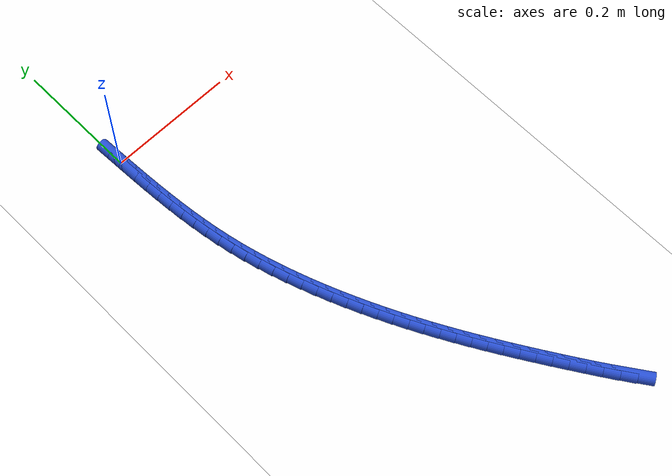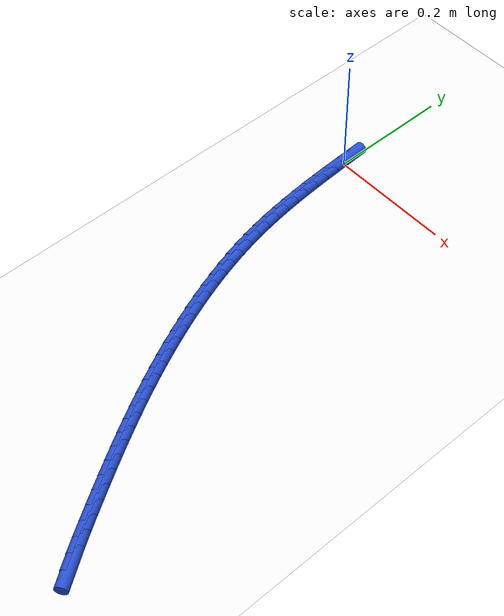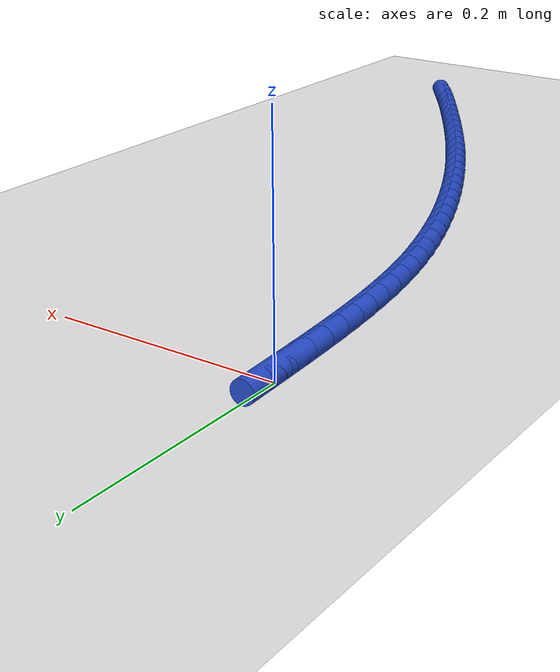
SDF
<sdf version="1.6">
 <world name="default">
  <model name="ground_plane">
   <static>1</static>
   <link name="link">
    <collision name="collision">
     <geometry><plane><normal>0 0 1</normal><size>100 100</size></plane></geometry>
     <surface><friction><ode><mu>100</mu><mu2>50</mu2></ode></friction></surface>
    </collision>
    <visual name="visual">
     <cast_shadows>0</cast_shadows>
     <geometry><plane><normal>0 0 1</normal><size>100 100</size></plane></geometry>
     <material>
      <script><uri>file://media/materials/scripts/gazebo.material</uri><name>Gazebo/WhiteGlow</name></script>
     </material>
    </visual>
   </link>
  </model>
  <model name="line">
   <link name="link_255">
    <pose>0.28056937066500454 -0.7446485402681698 0.01 0 1.57 -0.9630267590334372</pose>
    <collision name="collision">
     <geometry><cylinder><radius>0.01</radius><length>0.08</length></cylinder></geometry>
    </collision>
    <visual name="visual">
     <material>
      <script><name>Gazebo/Blue</name><uri>file://media/materials/scripts/gazebo.material</uri></script>
     </material>
     <geometry><cylinder><radius>0.01</radius><length>0.08</length></cylinder></geometry>
    </visual>
   </link>
   <link name="link_256">
    <pose>0.2667505615090434 -0.7247826279207238 0.01 0 1.57 -0.9837155238845308</pose>
    <collision name="collision">
     <geometry><cylinder><radius>0.01</radius><length>0.08</length></cylinder></geometry>
    </collision>
    <visual name="visual">
     <material>
      <script><name>Gazebo/Blue</name><uri>file://media/materials/scripts/gazebo.material</uri></script>
     </material>
     <geometry><cylinder><radius>0.01</radius><length>0.08</length></cylinder></geometry>
    </visual>
   </link>
   <link name="link_257">
    <pose>0.2533416906367986 -0.704629094985997 0.01 0 1.57 -0.9970443328957461</pose>
    <collision name="collision">
     <geometry><cylinder><radius>0.01</radius><length>0.08</length></cylinder></geometry>
    </collision>
    <visual name="visual">
     <material>
      <script><name>Gazebo/Blue</name><uri>file://media/materials/scripts/gazebo.material</uri></script>
     </material>
     <geometry><cylinder><radius>0.01</radius><length>0.08</length></cylinder></geometry>
    </visual>
   </link>
   <link name="link_258">
    <pose>0.24026441296643977 -0.6843942388483213 0.01 0 1.57 -1.0039140971449847</pose>
    <collision name="collision">
     <geometry><cylinder><radius>0.01</radius><length>0.08</length></cylinder></geometry>
    </collision>
    <visual name="visual">
     <material>
      <script><name>Gazebo/Blue</name><uri>file://media/materials/scripts/gazebo.material</uri></script>
     </material>
     <geometry><cylinder><radius>0.01</radius><length>0.08</length></cylinder></geometry>
    </visual>
   </link>
   <link name="link_259">
    <pose>0.22744834440279066 -0.6642615044161951 0.01 0 1.57 -1.0096226198764473</pose>
    <collision name="collision">
     <geometry><cylinder><radius>0.01</radius><length>0.08</length></cylinder></geometry>
    </collision>
    <visual name="visual">
     <material>
      <script><name>Gazebo/Blue</name><uri>file://media/materials/scripts/gazebo.material</uri></script>
     </material>
     <geometry><cylinder><radius>0.01</radius><length>0.08</length></cylinder></geometry>
    </visual>
   </link>
   <link name="link_260">
    <pose>0.21487644427381808 -0.6442612111952875 0.01 0 1.57 -1.0163605029629423</pose>
    <collision name="collision">
     <geometry><cylinder><radius>0.01</radius><length>0.08</length></cylinder></geometry>
    </collision>
    <visual name="visual">
     <material>
      <script><name>Gazebo/Blue</name><uri>file://media/materials/scripts/gazebo.material</uri></script>
     </material>
     <geometry><cylinder><radius>0.01</radius><length>0.08</length></cylinder></geometry>
    </visual>
   </link>
   <link name="link_261">
    <pose>0.2025535884064748 -0.62436076610452 0.01 0 1.57 -1.0241408725866683</pose>
    <collision name="collision">
     <geometry><cylinder><radius>0.01</radius><length>0.08</length></cylinder></geometry>
    </collision>
    <visual name="visual">
     <material>
      <script><name>Gazebo/Blue</name><uri>file://media/materials/scripts/gazebo.material</uri></script>
     </material>
     <geometry><cylinder><radius>0.01</radius><length>0.08</length></cylinder></geometry>
    </visual>
   </link>
   <link name="link_262">
    <pose>0.1904847198338123 -0.6045273831437944 0.01 0 1.57 -1.0329628603016814</pose>
    <collision name="collision">
     <geometry><cylinder><radius>0.01</radius><length>0.08</length></cylinder></geometry>
    </collision>
    <visual name="visual">
     <material>
      <script><name>Gazebo/Blue</name><uri>file://media/materials/scripts/gazebo.material</uri></script>
     </material>
     <geometry><cylinder><radius>0.01</radius><length>0.08</length></cylinder></geometry>
    </visual>
   </link>
   <link name="link_263">
    <pose>0.1786747815888822 -0.5847282763130133 0.01 0 1.57 -1.042817791955619</pose>
    <collision name="collision">
     <geometry><cylinder><radius>0.01</radius><length>0.08</length></cylinder></geometry>
    </collision>
    <visual name="visual">
     <material>
      <script><name>Gazebo/Blue</name><uri>file://media/materials/scripts/gazebo.material</uri></script>
     </material>
     <geometry><cylinder><radius>0.01</radius><length>0.08</length></cylinder></geometry>
    </visual>
   </link>
   <link name="link_264">
    <pose>0.16712871670473586 -0.5649306596120777 0.01 0 1.57 -1.0536887505075208</pose>
    <collision name="collision">
     <geometry><cylinder><radius>0.01</radius><length>0.08</length></cylinder></geometry>
    </collision>
    <visual name="visual">
     <material>
      <script><name>Gazebo/Blue</name><uri>file://media/materials/scripts/gazebo.material</uri></script>
     </material>
     <geometry><cylinder><radius>0.01</radius><length>0.08</length></cylinder></geometry>
    </visual>
   </link>
   <link name="link_265">
    <pose>0.1558514682144253 -0.5451017470408904 0.01 0 1.57 -1.0655502556388652</pose>
    <collision name="collision">
     <geometry><cylinder><radius>0.01</radius><length>0.08</length></cylinder></geometry>
    </collision>
    <visual name="visual">
     <material>
      <script><name>Gazebo/Blue</name><uri>file://media/materials/scripts/gazebo.material</uri></script>
     </material>
     <geometry><cylinder><radius>0.01</radius><length>0.08</length></cylinder></geometry>
    </visual>
   </link>
   <link name="link_266">
    <pose>0.1448479791510012 -0.5252087525993522 0.01 0 1.57 -1.078368086659126</pose>
    <collision name="collision">
     <geometry><cylinder><radius>0.01</radius><length>0.08</length></cylinder></geometry>
    </collision>
    <visual name="visual">
     <material>
      <script><name>Gazebo/Blue</name><uri>file://media/materials/scripts/gazebo.material</uri></script>
     </material>
     <geometry><cylinder><radius>0.01</radius><length>0.08</length></cylinder></geometry>
    </visual>
   </link>
   <link name="link_267">
    <pose>0.1341231925475154 -0.5052188902873652 0.01 0 1.57 -1.092099273404626</pose>
    <collision name="collision">
     <geometry><cylinder><radius>0.01</radius><length>0.08</length></cylinder></geometry>
    </collision>
    <visual name="visual">
     <material>
      <script><name>Gazebo/Blue</name><uri>file://media/materials/scripts/gazebo.material</uri></script>
     </material>
     <geometry><cylinder><radius>0.01</radius><length>0.08</length></cylinder></geometry>
    </visual>
   </link>
   <link name="link_268">
    <pose>0.12368205143701945 -0.4850993741048312 0.01 0 1.57 -1.106692276000209</pose>
    <collision name="collision">
     <geometry><cylinder><radius>0.01</radius><length>0.08</length></cylinder></geometry>
    </collision>
    <visual name="visual">
     <material>
      <script><name>Gazebo/Blue</name><uri>file://media/materials/scripts/gazebo.material</uri></script>
     </material>
     <geometry><cylinder><radius>0.01</radius><length>0.08</length></cylinder></geometry>
    </visual>
   </link>
   <link name="link_269">
    <pose>0.1135294988525649 -0.46481741805165255 0.01 0 1.57 -1.1220873683787245</pose>
    <collision name="collision">
     <geometry><cylinder><radius>0.01</radius><length>0.08</length></cylinder></geometry>
    </collision>
    <visual name="visual">
     <material>
      <script><name>Gazebo/Blue</name><uri>file://media/materials/scripts/gazebo.material</uri></script>
     </material>
     <geometry><cylinder><radius>0.01</radius><length>0.08</length></cylinder></geometry>
    </visual>
   </link>
   <link name="link_270">
    <pose>0.10367047782720316 -0.44434023612773055 0.01 0 1.57 -1.1382172324297657</pose>
    <collision name="collision">
     <geometry><cylinder><radius>0.01</radius><length>0.08</length></cylinder></geometry>
    </collision>
    <visual name="visual">
     <material>
      <script><name>Gazebo/Blue</name><uri>file://media/materials/scripts/gazebo.material</uri></script>
     </material>
     <geometry><cylinder><radius>0.01</radius><length>0.08</length></cylinder></geometry>
    </visual>
   </link>
   <link name="link_271">
    <pose>0.09410993139398575 -0.4236350423329672 0.01 0 1.57 -1.1550431633203553</pose>
    <collision name="collision">
     <geometry><cylinder><radius>0.01</radius><length>0.08</length></cylinder></geometry>
    </collision>
    <visual name="visual">
     <material>
      <script><name>Gazebo/Blue</name><uri>file://media/materials/scripts/gazebo.material</uri></script>
     </material>
     <geometry><cylinder><radius>0.01</radius><length>0.08</length></cylinder></geometry>
    </visual>
   </link>
   <link name="link_272">
    <pose>0.08485600152269943 -0.4026742874502192 0.01 0 1.57 -1.1727745584845584</pose>
    <collision name="collision">
     <geometry><cylinder><radius>0.01</radius><length>0.08</length></cylinder></geometry>
    </collision>
    <visual name="visual">
     <material>
      <script><name>Gazebo/Blue</name><uri>file://media/materials/scripts/gazebo.material</uri></script>
     </material>
     <geometry><cylinder><radius>0.01</radius><length>0.08</length></cylinder></geometry>
    </visual>
   </link>
   <link name="link_273">
    <pose>0.07593898504505248 -0.3814666906267655 0.01 0 1.57 -1.1915665116877237</pose>
    <collision name="collision">
     <geometry><cylinder><radius>0.01</radius><length>0.08</length></cylinder></geometry>
    </collision>
    <visual name="visual">
     <material>
      <script><name>Gazebo/Blue</name><uri>file://media/materials/scripts/gazebo.material</uri></script>
     </material>
     <geometry><cylinder><radius>0.01</radius><length>0.08</length></cylinder></geometry>
    </visual>
   </link>
   <link name="link_274">
    <pose>0.06739855515200982 -0.36003632047203404 0.01 0 1.57 -1.2114885232173054</pose>
    <collision name="collision">
     <geometry><cylinder><radius>0.01</radius><length>0.08</length></cylinder></geometry>
    </collision>
    <visual name="visual">
     <material>
      <script><name>Gazebo/Blue</name><uri>file://media/materials/scripts/gazebo.material</uri></script>
     </material>
     <geometry><cylinder><radius>0.01</radius><length>0.08</length></cylinder></geometry>
    </visual>
   </link>
   <link name="link_275">
    <pose>0.05927441861655796 -0.3384073005705182 0.01 0 1.57 -1.2326148033907445</pose>
    <collision name="collision">
     <geometry><cylinder><radius>0.01</radius><length>0.08</length></cylinder></geometry>
    </collision>
    <visual name="visual">
     <material>
      <script><name>Gazebo/Blue</name><uri>file://media/materials/scripts/gazebo.material</uri></script>
     </material>
     <geometry><cylinder><radius>0.01</radius><length>0.08</length></cylinder></geometry>
    </visual>
   </link>
   <link name="link_276">
    <pose>0.051606282211683396 -0.316603754506712 0.01 0 1.57 -1.2550245396580006</pose>
    <collision name="collision">
     <geometry><cylinder><radius>0.01</radius><length>0.08</length></cylinder></geometry>
    </collision>
    <visual name="visual">
     <material>
      <script><name>Gazebo/Blue</name><uri>file://media/materials/scripts/gazebo.material</uri></script>
     </material>
     <geometry><cylinder><radius>0.01</radius><length>0.08</length></cylinder></geometry>
    </visual>
   </link>
   <link name="link_277">
    <pose>0.04443385271037259 -0.2946498058651089 0.01 0 1.57 -1.2788016504567985</pose>
    <collision name="collision">
     <geometry><cylinder><radius>0.01</radius><length>0.08</length></cylinder></geometry>
    </collision>
    <visual name="visual">
     <material>
      <script><name>Gazebo/Blue</name><uri>file://media/materials/scripts/gazebo.material</uri></script>
     </material>
     <geometry><cylinder><radius>0.01</radius><length>0.08</length></cylinder></geometry>
    </visual>
   </link>
   <link name="link_278">
    <pose>0.03779683688561202 -0.27256957823020267 0.01 0 1.57 -1.3040343458538313</pose>
    <collision name="collision">
     <geometry><cylinder><radius>0.01</radius><length>0.08</length></cylinder></geometry>
    </collision>
    <visual name="visual">
     <material>
      <script><name>Gazebo/Blue</name><uri>file://media/materials/scripts/gazebo.material</uri></script>
     </material>
     <geometry><cylinder><radius>0.01</radius><length>0.08</length></cylinder></geometry>
    </visual>
   </link>
   <link name="link_279">
    <pose>0.03173494151038818 -0.250387195186487 0.01 0 1.57 -1.330814432485385</pose>
    <collision name="collision">
     <geometry><cylinder><radius>0.01</radius><length>0.08</length></cylinder></geometry>
    </collision>
    <visual name="visual">
     <material>
      <script><name>Gazebo/Blue</name><uri>file://media/materials/scripts/gazebo.material</uri></script>
     </material>
     <geometry><cylinder><radius>0.01</radius><length>0.08</length></cylinder></geometry>
    </visual>
   </link>
   <link name="link_280">
    <pose>0.026287873357687713 -0.22812678031845637 0.01 0 1.57 -1.359190294989538</pose>
    <collision name="collision">
     <geometry><cylinder><radius>0.01</radius><length>0.08</length></cylinder></geometry>
    </collision>
    <visual name="visual">
     <material>
      <script><name>Gazebo/Blue</name><uri>file://media/materials/scripts/gazebo.material</uri></script>
     </material>
     <geometry><cylinder><radius>0.01</radius><length>0.08</length></cylinder></geometry>
    </visual>
   </link>
   <link name="link_281">
    <pose>0.021494149198682776 -0.2058119157143591 0.01 0 1.57 -1.3875261863993624</pose>
    <collision name="collision">
     <geometry><cylinder><radius>0.01</radius><length>0.08</length></cylinder></geometry>
    </collision>
    <visual name="visual">
     <material>
      <script><name>Gazebo/Blue</name><uri>file://media/materials/scripts/gazebo.material</uri></script>
     </material>
     <geometry><cylinder><radius>0.01</radius><length>0.08</length></cylinder></geometry>
    </visual>
   </link>
   <link name="link_282">
    <pose>0.017348691434705677 -0.1834463463603125 0.01 0 1.57 -1.4135587090386257</pose>
    <collision name="collision">
     <geometry><cylinder><radius>0.01</radius><length>0.08</length></cylinder></geometry>
    </collision>
    <visual name="visual">
     <material>
      <script><name>Gazebo/Blue</name><uri>file://media/materials/scripts/gazebo.material</uri></script>
     </material>
     <geometry><cylinder><radius>0.01</radius><length>0.08</length></cylinder></geometry>
    </visual>
   </link>
   <link name="link_283">
    <pose>0.013791288147023168 -0.16100872902250513 0.01 0 1.57 -1.4369913823490548</pose>
    <collision name="collision">
     <geometry><cylinder><radius>0.01</radius><length>0.08</length></cylinder></geometry>
    </collision>
    <visual name="visual">
     <material>
      <script><name>Gazebo/Blue</name><uri>file://media/materials/scripts/gazebo.material</uri></script>
     </material>
     <geometry><cylinder><radius>0.01</radius><length>0.08</length></cylinder></geometry>
    </visual>
   </link>
   <link name="link_284">
    <pose>0.010758189449093649 -0.13847611055673997 0.01 0 1.57 -1.4577057004802851</pose>
    <collision name="collision">
     <geometry><cylinder><radius>0.01</radius><length>0.08</length></cylinder></geometry>
    </collision>
    <visual name="visual">
     <material>
      <script><name>Gazebo/Blue</name><uri>file://media/materials/scripts/gazebo.material</uri></script>
     </material>
     <geometry><cylinder><radius>0.01</radius><length>0.08</length></cylinder></geometry>
    </visual>
   </link>
   <link name="link_285">
    <pose>0.008185645454375525 -0.11582553781881992 0.01 0 1.57 -1.4756219112606759</pose>
    <collision name="collision">
     <geometry><cylinder><radius>0.01</radius><length>0.08</length></cylinder></geometry>
    </collision>
    <visual name="visual">
     <material>
      <script><name>Gazebo/Blue</name><uri>file://media/materials/scripts/gazebo.material</uri></script>
     </material>
     <geometry><cylinder><radius>0.01</radius><length>0.08</length></cylinder></geometry>
    </visual>
   </link>
   <link name="link_286">
    <pose>0.006009906276327199 -0.09303405766454792 0.01 0 1.57 -1.490695507995509</pose>
    <collision name="collision">
     <geometry><cylinder><radius>0.01</radius><length>0.08</length></cylinder></geometry>
    </collision>
    <visual name="visual">
     <material>
      <script><name>Gazebo/Blue</name><uri>file://media/materials/scripts/gazebo.material</uri></script>
     </material>
     <geometry><cylinder><radius>0.01</radius><length>0.08</length></cylinder></geometry>
    </visual>
   </link>
   <link name="link_287">
    <pose>0.0041672220284070804 -0.07007871694972702 0.01 0 1.57 -1.5029132049123655</pose>
    <collision name="collision">
     <geometry><cylinder><radius>0.01</radius><length>0.08</length></cylinder></geometry>
    </collision>
    <visual name="visual">
     <material>
      <script><name>Gazebo/Blue</name><uri>file://media/materials/scripts/gazebo.material</uri></script>
     </material>
     <geometry><cylinder><radius>0.01</radius><length>0.08</length></cylinder></geometry>
    </visual>
   </link>
   <link name="link_288">
    <pose>0.0025938428240735714 -0.046936562530160104 0.01 0 1.57 -1.5122888091927496</pose>
    <collision name="collision">
     <geometry><cylinder><radius>0.01</radius><length>0.08</length></cylinder></geometry>
    </collision>
    <visual name="visual">
     <material>
      <script><name>Gazebo/Blue</name><uri>file://media/materials/scripts/gazebo.material</uri></script>
     </material>
     <geometry><cylinder><radius>0.01</radius><length>0.08</length></cylinder></geometry>
    </visual>
   </link>
   <link name="link_289">
    <pose>0.0012260187767850776 -0.023584641261650125 0.01 0 1.57 -1.5188592976038644</pose>
    <collision name="collision">
     <geometry><cylinder><radius>0.01</radius><length>0.08</length></cylinder></geometry>
    </collision>
    <visual name="visual">
     <material>
      <script><name>Gazebo/Blue</name><uri>file://media/materials/scripts/gazebo.material</uri></script>
     </material>
     <geometry><cylinder><radius>0.01</radius><length>0.08</length></cylinder></geometry>
    </visual>
   </link>
   <link name="link_290">
    <pose>4.336808689942018e-18 -6.938893903907228e-17 0.01 0 1.57 -1.5226812990146725</pose>
    <collision name="collision">
     <geometry><cylinder><radius>0.01</radius><length>0.08</length></cylinder></geometry>
    </collision>
    <visual name="visual">
     <material>
      <script><name>Gazebo/Blue</name><uri>file://media/materials/scripts/gazebo.material</uri></script>
     </material>
     <geometry><cylinder><radius>0.01</radius><length>0.08</length></cylinder></geometry>
    </visual>
   </link>
  </model>
 </world>
</sdf>
